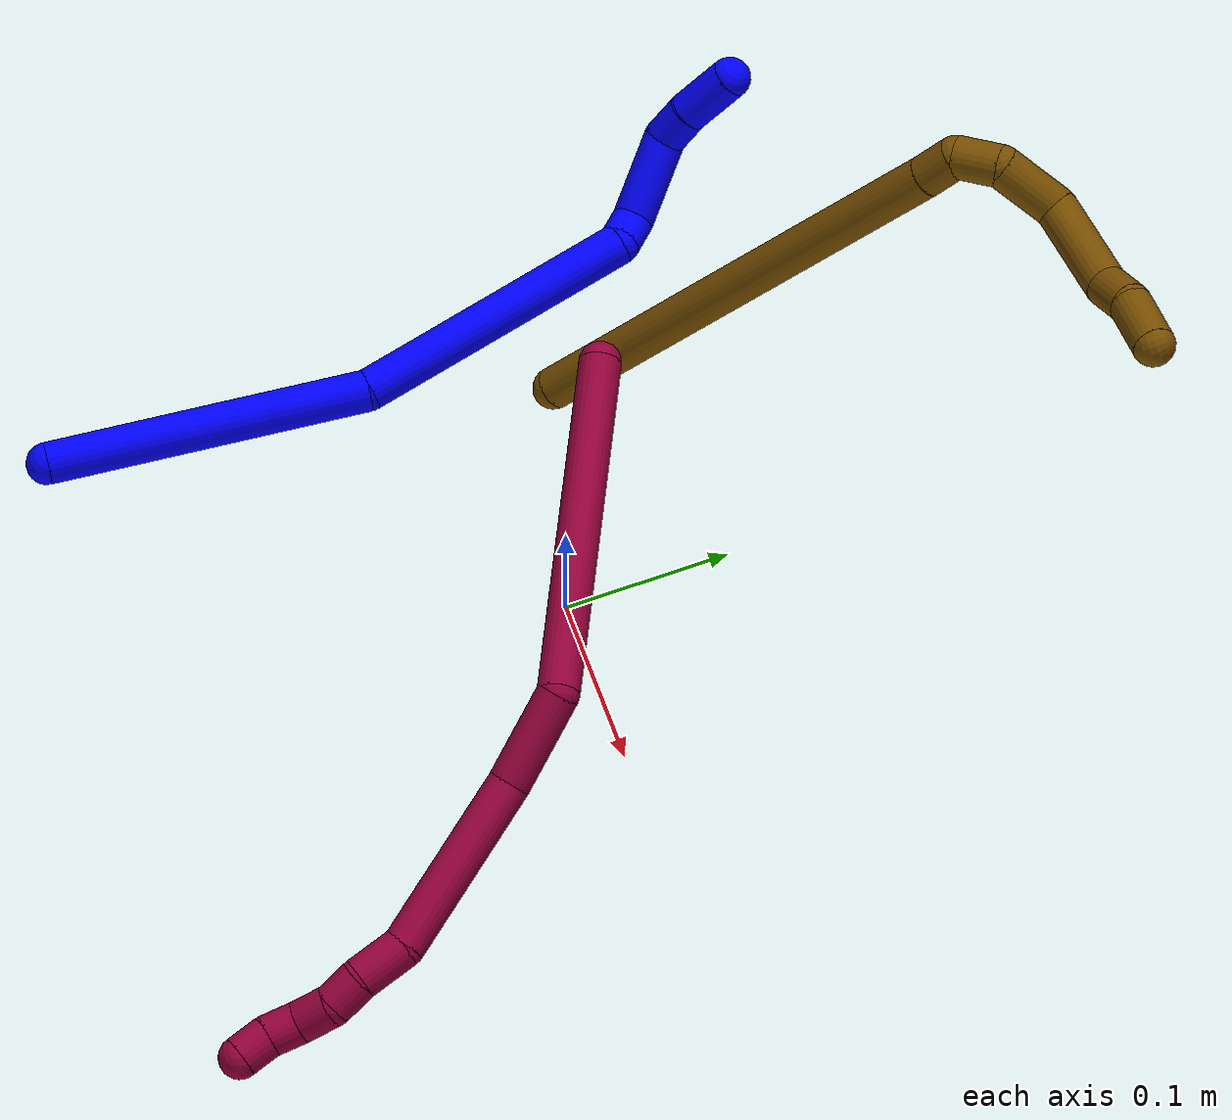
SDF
<sdf version="1.7">
 <world name="default">
  <model name="1">
   <static>0</static>
   <link name="1">
    <collision name="collision-cylinder-e_1_1_4">
     <pose>0.001475 0.088067 -0.039302 -1.99055 0.015292 -0.02357</pose>
     <geometry><cylinder><radius>0.0125</radius><length>0.192901</length></cylinder></geometry>
     <surface>
      <friction><ode><mu>1.16</mu><mu2>1.16</mu2><slip1>0</slip1><slip2>0</slip2></ode></friction>
      <contact><ode><kp>1e+06</kp><kd>1</kd><max_vel>0</max_vel><min_depth>0.001</min_depth></ode></contact>
     </surface>
    </collision>
    <visual name="visual-cylinder-e_1_1_4">
     <pose>0.001475 0.088067 -0.039302 -1.99055 0.015292 -0.02357</pose>
     <geometry><cylinder><radius>0.0125</radius><length>0.192901</length></cylinder></geometry>
     <material><ambient>0 0 1 1</ambient></material>
    </visual>
    <collision name="collision-cylinder-e_2_4_5">
     <pose>0.03096 0.249667 -0.116082 -2.04216 0.327187 -0.526315</pose>
     <geometry><cylinder><radius>0.0125</radius><length>0.174312</length></cylinder></geometry>
     <surface>
      <friction><ode><mu>1.16</mu><mu2>1.16</mu2><slip1>0</slip1><slip2>0</slip2></ode></friction>
      <contact><ode><kp>1e+06</kp><kd>1</kd><max_vel>0</max_vel><min_depth>0.001</min_depth></ode></contact>
     </surface>
    </collision>
    <visual name="visual-cylinder-e_2_4_5">
     <pose>0.03096 0.249667 -0.116082 -2.04216 0.327187 -0.526315</pose>
     <geometry><cylinder><radius>0.0125</radius><length>0.174312</length></cylinder></geometry>
     <material><ambient>0 0 1 1</ambient></material>
    </visual>
    <collision name="collision-cylinder-e_3_5_6">
     <pose>0.06734 0.330035 -0.153644 -1.58298 0.885909 -0.895384</pose>
     <geometry><cylinder><radius>0.0125</radius><length>0.021614</length></cylinder></geometry>
     <surface>
      <friction><ode><mu>1.16</mu><mu2>1.16</mu2><slip1>0</slip1><slip2>0</slip2></ode></friction>
      <contact><ode><kp>1e+06</kp><kd>1</kd><max_vel>0</max_vel><min_depth>0.001</min_depth></ode></contact>
     </surface>
    </collision>
    <visual name="visual-cylinder-e_3_5_6">
     <pose>0.06734 0.330035 -0.153644 -1.58298 0.885909 -0.895384</pose>
     <geometry><cylinder><radius>0.0125</radius><length>0.021614</length></cylinder></geometry>
     <material><ambient>0 0 1 1</ambient></material>
    </visual>
    <collision name="collision-cylinder-e_4_6_7">
     <pose>0.093678 0.344658 -0.17084 -2.71455 0.762741 -2.15022</pose>
     <geometry><cylinder><radius>0.0125</radius><length>0.052014</length></cylinder></geometry>
     <surface>
      <friction><ode><mu>1.16</mu><mu2>1.16</mu2><slip1>0</slip1><slip2>0</slip2></ode></friction>
      <contact><ode><kp>1e+06</kp><kd>1</kd><max_vel>0</max_vel><min_depth>0.001</min_depth></ode></contact>
     </surface>
    </collision>
    <visual name="visual-cylinder-e_4_6_7">
     <pose>0.093678 0.344658 -0.17084 -2.71455 0.762741 -2.15022</pose>
     <geometry><cylinder><radius>0.0125</radius><length>0.052014</length></cylinder></geometry>
     <material><ambient>0 0 1 1</ambient></material>
    </visual>
    <collision name="collision-cylinder-e_5_7_8">
     <pose>0.113622 0.355694 -0.199212 -2.86069 0.166996 -1.06896</pose>
     <geometry><cylinder><radius>0.0125</radius><length>0.023768</length></cylinder></geometry>
     <surface>
      <friction><ode><mu>1.16</mu><mu2>1.16</mu2><slip1>0</slip1><slip2>0</slip2></ode></friction>
      <contact><ode><kp>1e+06</kp><kd>1</kd><max_vel>0</max_vel><min_depth>0.001</min_depth></ode></contact>
     </surface>
    </collision>
    <visual name="visual-cylinder-e_5_7_8">
     <pose>0.113622 0.355694 -0.199212 -2.86069 0.166996 -1.06896</pose>
     <geometry><cylinder><radius>0.0125</radius><length>0.023768</length></cylinder></geometry>
     <material><ambient>0 0 1 1</ambient></material>
    </visual>
    <collision name="collision-cylinder-e_6_8_2">
     <pose>0.11736 0.365966 -0.226618 -2.73131 0.09979 -0.471095</pose>
     <geometry><cylinder><radius>0.0125</radius><length>0.035392</length></cylinder></geometry>
     <surface>
      <friction><ode><mu>1.16</mu><mu2>1.16</mu2><slip1>0</slip1><slip2>0</slip2></ode></friction>
      <contact><ode><kp>1e+06</kp><kd>1</kd><max_vel>0</max_vel><min_depth>0.001</min_depth></ode></contact>
     </surface>
    </collision>
    <visual name="visual-cylinder-e_6_8_2">
     <pose>0.11736 0.365966 -0.226618 -2.73131 0.09979 -0.471095</pose>
     <geometry><cylinder><radius>0.0125</radius><length>0.035392</length></cylinder></geometry>
     <material><ambient>0 0 1 1</ambient></material>
    </visual>
    <collision name="collision-sphere-2">
     <pose>0.119123 0.372989 -0.242765 0 -0 0</pose>
     <geometry><sphere><radius>0.0125</radius></sphere></geometry>
     <surface>
      <friction><ode><mu>1.16</mu><mu2>1.16</mu2><slip1>0</slip1><slip2>0</slip2></ode></friction>
      <contact><ode><kp>1e+06</kp><kd>1</kd><max_vel>0</max_vel><min_depth>0.001</min_depth></ode></contact>
     </surface>
    </collision>
    <visual name="visual-sphere-2">
     <pose>0.119123 0.372989 -0.242765 0 -0 0</pose>
     <geometry><sphere><radius>0.0125</radius></sphere></geometry>
     <material><ambient>0 0 1 1</ambient></material>
    </visual>
    <collision name="collision-sphere-4">
     <pose>0.00295 0.176135 -0.078604 0 -0 0</pose>
     <geometry><sphere><radius>0.0125</radius></sphere></geometry>
     <surface>
      <friction><ode><mu>1.16</mu><mu2>1.16</mu2><slip1>0</slip1><slip2>0</slip2></ode></friction>
      <contact><ode><kp>1e+06</kp><kd>1</kd><max_vel>0</max_vel><min_depth>0.001</min_depth></ode></contact>
     </surface>
    </collision>
    <visual name="visual-sphere-4">
     <pose>0.00295 0.176135 -0.078604 0 -0 0</pose>
     <geometry><sphere><radius>0.0125</radius></sphere></geometry>
     <material><ambient>0 0 1 1</ambient></material>
    </visual>
    <collision name="collision-sphere-1">
     <geometry><sphere><radius>0.0125</radius></sphere></geometry>
     <surface>
      <friction><ode><mu>1.16</mu><mu2>1.16</mu2><slip1>0</slip1><slip2>0</slip2></ode></friction>
      <contact><ode><kp>1e+06</kp><kd>1</kd><max_vel>0</max_vel><min_depth>0.001</min_depth></ode></contact>
     </surface>
    </collision>
    <visual name="visual-sphere-1">
     <geometry><sphere><radius>0.0125</radius></sphere></geometry>
     <material><ambient>0 0 1 1</ambient></material>
    </visual>
    <collision name="collision-sphere-8">
     <pose>0.115597 0.358943 -0.210472 0 -0 0</pose>
     <geometry><sphere><radius>0.0125</radius></sphere></geometry>
     <surface>
      <friction><ode><mu>1.16</mu><mu2>1.16</mu2><slip1>0</slip1><slip2>0</slip2></ode></friction>
      <contact><ode><kp>1e+06</kp><kd>1</kd><max_vel>0</max_vel><min_depth>0.001</min_depth></ode></contact>
     </surface>
    </collision>
    <visual name="visual-sphere-8">
     <pose>0.115597 0.358943 -0.210472 0 -0 0</pose>
     <geometry><sphere><radius>0.0125</radius></sphere></geometry>
     <material><ambient>0 0 1 1</ambient></material>
    </visual>
    <collision name="collision-sphere-5">
     <pose>0.05897 0.323199 -0.153561 0 -0 0</pose>
     <geometry><sphere><radius>0.0125</radius></sphere></geometry>
     <surface>
      <friction><ode><mu>1.16</mu><mu2>1.16</mu2><slip1>0</slip1><slip2>0</slip2></ode></friction>
      <contact><ode><kp>1e+06</kp><kd>1</kd><max_vel>0</max_vel><min_depth>0.001</min_depth></ode></contact>
     </surface>
    </collision>
    <visual name="visual-sphere-5">
     <pose>0.05897 0.323199 -0.153561 0 -0 0</pose>
     <geometry><sphere><radius>0.0125</radius></sphere></geometry>
     <material><ambient>0 0 1 1</ambient></material>
    </visual>
    <collision name="collision-sphere-6">
     <pose>0.07571 0.336871 -0.153727 0 -0 0</pose>
     <geometry><sphere><radius>0.0125</radius></sphere></geometry>
     <surface>
      <friction><ode><mu>1.16</mu><mu2>1.16</mu2><slip1>0</slip1><slip2>0</slip2></ode></friction>
      <contact><ode><kp>1e+06</kp><kd>1</kd><max_vel>0</max_vel><min_depth>0.001</min_depth></ode></contact>
     </surface>
    </collision>
    <visual name="visual-sphere-6">
     <pose>0.07571 0.336871 -0.153727 0 -0 0</pose>
     <geometry><sphere><radius>0.0125</radius></sphere></geometry>
     <material><ambient>0 0 1 1</ambient></material>
    </visual>
    <collision name="collision-sphere-7">
     <pose>0.111646 0.352445 -0.187953 0 -0 0</pose>
     <geometry><sphere><radius>0.0125</radius></sphere></geometry>
     <surface>
      <friction><ode><mu>1.16</mu><mu2>1.16</mu2><slip1>0</slip1><slip2>0</slip2></ode></friction>
      <contact><ode><kp>1e+06</kp><kd>1</kd><max_vel>0</max_vel><min_depth>0.001</min_depth></ode></contact>
     </surface>
    </collision>
    <visual name="visual-sphere-7">
     <pose>0.111646 0.352445 -0.187953 0 -0 0</pose>
     <geometry><sphere><radius>0.0125</radius></sphere></geometry>
     <material><ambient>0 0 1 1</ambient></material>
    </visual>
    <inertial>
     <pose>0.037727 0.213949 -0.105556 0 -0 0</pose>
     <mass>0.5</mass>
     <inertia>
      <ixx>0.000742</ixx>
      <ixy>0</ixy>
      <ixz>0</ixz>
      <iyy>-0.000563</iyy>
      <iyz>0</iyz>
      <izz>-0.001123</izz>
     </inertia>
    </inertial>
   </link>
   <pose>-0.184654 -0.255955 0.011626 -2.72166 0.033668 3.02924</pose>
  </model>
  <model name="8">
   <static>0</static>
   <link name="8">
    <collision name="collision-cylinder-e_1_1_4">
     <pose>0.019826 -0.016124 0.104472 0.153134 0.1854 0.014264</pose>
     <geometry><cylinder><radius>0.0125</radius><length>0.215105</length></cylinder></geometry>
     <surface>
      <friction><ode><mu>1.16</mu><mu2>1.16</mu2><slip1>0</slip1><slip2>0</slip2></ode></friction>
      <contact><ode><kp>1e+06</kp><kd>1</kd><max_vel>0</max_vel><min_depth>0.001</min_depth></ode></contact>
     </surface>
    </collision>
    <visual name="visual-cylinder-e_1_1_4">
     <pose>0.019826 -0.016124 0.104472 0.153134 0.1854 0.014264</pose>
     <geometry><cylinder><radius>0.0125</radius><length>0.215105</length></cylinder></geometry>
     <material><ambient>0.584314 0 0.227451 1</ambient></material>
    </visual>
    <collision name="collision-cylinder-e_2_4_5">
     <pose>0.059693 -0.044453 0.226867 0.597803 0.746066 0.240021</pose>
     <geometry><cylinder><radius>0.0125</radius><length>0.059052</length></cylinder></geometry>
     <surface>
      <friction><ode><mu>1.16</mu><mu2>1.16</mu2><slip1>0</slip1><slip2>0</slip2></ode></friction>
      <contact><ode><kp>1e+06</kp><kd>1</kd><max_vel>0</max_vel><min_depth>0.001</min_depth></ode></contact>
     </surface>
    </collision>
    <visual name="visual-cylinder-e_2_4_5">
     <pose>0.059693 -0.044453 0.226867 0.597803 0.746066 0.240021</pose>
     <geometry><cylinder><radius>0.0125</radius><length>0.059052</length></cylinder></geometry>
     <material><ambient>0.584314 0 0.227451 1</ambient></material>
    </visual>
    <collision name="collision-cylinder-e_3_5_6">
     <pose>0.10367 -0.085825 0.285611 0.620419 0.44515 0.144847</pose>
     <geometry><cylinder><radius>0.0125</radius><length>0.111177</length></cylinder></geometry>
     <surface>
      <friction><ode><mu>1.16</mu><mu2>1.16</mu2><slip1>0</slip1><slip2>0</slip2></ode></friction>
      <contact><ode><kp>1e+06</kp><kd>1</kd><max_vel>0</max_vel><min_depth>0.001</min_depth></ode></contact>
     </surface>
    </collision>
    <visual name="visual-cylinder-e_3_5_6">
     <pose>0.10367 -0.085825 0.285611 0.620419 0.44515 0.144847</pose>
     <geometry><cylinder><radius>0.0125</radius><length>0.111177</length></cylinder></geometry>
     <material><ambient>0.584314 0 0.227451 1</ambient></material>
    </visual>
    <collision name="collision-cylinder-e_4_6_7">
     <pose>0.133605 -0.127052 0.333891 1.01685 0.400254 0.22513</pose>
     <geometry><cylinder><radius>0.0125</radius><length>0.030794</length></cylinder></geometry>
     <surface>
      <friction><ode><mu>1.16</mu><mu2>1.16</mu2><slip1>0</slip1><slip2>0</slip2></ode></friction>
      <contact><ode><kp>1e+06</kp><kd>1</kd><max_vel>0</max_vel><min_depth>0.001</min_depth></ode></contact>
     </surface>
    </collision>
    <visual name="visual-cylinder-e_4_6_7">
     <pose>0.133605 -0.127052 0.333891 1.01685 0.400254 0.22513</pose>
     <geometry><cylinder><radius>0.0125</radius><length>0.030794</length></cylinder></geometry>
     <material><ambient>0.584314 0 0.227451 1</ambient></material>
    </visual>
    <collision name="collision-cylinder-e_5_7_8">
     <pose>0.145959 -0.14616 0.346283 0.960146 0.636128 0.339574</pose>
     <geometry><cylinder><radius>0.0125</radius><length>0.02139</length></cylinder></geometry>
     <surface>
      <friction><ode><mu>1.16</mu><mu2>1.16</mu2><slip1>0</slip1><slip2>0</slip2></ode></friction>
      <contact><ode><kp>1e+06</kp><kd>1</kd><max_vel>0</max_vel><min_depth>0.001</min_depth></ode></contact>
     </surface>
    </collision>
    <visual name="visual-cylinder-e_5_7_8">
     <pose>0.145959 -0.14616 0.346283 0.960146 0.636128 0.339574</pose>
     <geometry><cylinder><radius>0.0125</radius><length>0.02139</length></cylinder></geometry>
     <material><ambient>0.584314 0 0.227451 1</ambient></material>
    </visual>
    <collision name="collision-cylinder-e_6_8_9">
     <pose>0.159871 -0.161458 0.35225 1.44613 0.737819 0.657599</pose>
     <geometry><cylinder><radius>0.0125</radius><length>0.022473</length></cylinder></geometry>
     <surface>
      <friction><ode><mu>1.16</mu><mu2>1.16</mu2><slip1>0</slip1><slip2>0</slip2></ode></friction>
      <contact><ode><kp>1e+06</kp><kd>1</kd><max_vel>0</max_vel><min_depth>0.001</min_depth></ode></contact>
     </surface>
    </collision>
    <visual name="visual-cylinder-e_6_8_9">
     <pose>0.159871 -0.161458 0.35225 1.44613 0.737819 0.657599</pose>
     <geometry><cylinder><radius>0.0125</radius><length>0.022473</length></cylinder></geometry>
     <material><ambient>0.584314 0 0.227451 1</ambient></material>
    </visual>
    <collision name="collision-cylinder-e_7_9_10">
     <pose>0.171385 -0.178515 0.355891 1.283 0.406621 0.30555</pose>
     <geometry><cylinder><radius>0.0125</radius><length>0.020001</length></cylinder></geometry>
     <surface>
      <friction><ode><mu>1.16</mu><mu2>1.16</mu2><slip1>0</slip1><slip2>0</slip2></ode></friction>
      <contact><ode><kp>1e+06</kp><kd>1</kd><max_vel>0</max_vel><min_depth>0.001</min_depth></ode></contact>
     </surface>
    </collision>
    <visual name="visual-cylinder-e_7_9_10">
     <pose>0.171385 -0.178515 0.355891 1.283 0.406621 0.30555</pose>
     <geometry><cylinder><radius>0.0125</radius><length>0.020001</length></cylinder></geometry>
     <material><ambient>0.584314 0 0.227451 1</ambient></material>
    </visual>
    <collision name="collision-cylinder-e_8_10_2">
     <pose>0.178716 -0.195158 0.363723 0.98269 0.344212 0.185501</pose>
     <geometry><cylinder><radius>0.0125</radius><length>0.020008</length></cylinder></geometry>
     <surface>
      <friction><ode><mu>1.16</mu><mu2>1.16</mu2><slip1>0</slip1><slip2>0</slip2></ode></friction>
      <contact><ode><kp>1e+06</kp><kd>1</kd><max_vel>0</max_vel><min_depth>0.001</min_depth></ode></contact>
     </surface>
    </collision>
    <visual name="visual-cylinder-e_8_10_2">
     <pose>0.178716 -0.195158 0.363723 0.98269 0.344212 0.185501</pose>
     <geometry><cylinder><radius>0.0125</radius><length>0.020008</length></cylinder></geometry>
     <material><ambient>0.584314 0 0.227451 1</ambient></material>
    </visual>
    <collision name="collision-sphere-2">
     <pose>0.182092 -0.202993 0.368947 0 -0 0</pose>
     <geometry><sphere><radius>0.0125</radius></sphere></geometry>
     <surface>
      <friction><ode><mu>1.16</mu><mu2>1.16</mu2><slip1>0</slip1><slip2>0</slip2></ode></friction>
      <contact><ode><kp>1e+06</kp><kd>1</kd><max_vel>0</max_vel><min_depth>0.001</min_depth></ode></contact>
     </surface>
    </collision>
    <visual name="visual-sphere-2">
     <pose>0.182092 -0.202993 0.368947 0 -0 0</pose>
     <geometry><sphere><radius>0.0125</radius></sphere></geometry>
     <material><ambient>0.584314 0 0.227451 1</ambient></material>
    </visual>
    <collision name="collision-sphere-10">
     <pose>0.17534 -0.187323 0.358498 0 -0 0</pose>
     <geometry><sphere><radius>0.0125</radius></sphere></geometry>
     <surface>
      <friction><ode><mu>1.16</mu><mu2>1.16</mu2><slip1>0</slip1><slip2>0</slip2></ode></friction>
      <contact><ode><kp>1e+06</kp><kd>1</kd><max_vel>0</max_vel><min_depth>0.001</min_depth></ode></contact>
     </surface>
    </collision>
    <visual name="visual-sphere-10">
     <pose>0.17534 -0.187323 0.358498 0 -0 0</pose>
     <geometry><sphere><radius>0.0125</radius></sphere></geometry>
     <material><ambient>0.584314 0 0.227451 1</ambient></material>
    </visual>
    <collision name="collision-sphere-9">
     <pose>0.16743 -0.169708 0.353284 0 -0 0</pose>
     <geometry><sphere><radius>0.0125</radius></sphere></geometry>
     <surface>
      <friction><ode><mu>1.16</mu><mu2>1.16</mu2><slip1>0</slip1><slip2>0</slip2></ode></friction>
      <contact><ode><kp>1e+06</kp><kd>1</kd><max_vel>0</max_vel><min_depth>0.001</min_depth></ode></contact>
     </surface>
    </collision>
    <visual name="visual-sphere-9">
     <pose>0.16743 -0.169708 0.353284 0 -0 0</pose>
     <geometry><sphere><radius>0.0125</radius></sphere></geometry>
     <material><ambient>0.584314 0 0.227451 1</ambient></material>
    </visual>
    <collision name="collision-sphere-4">
     <pose>0.039652 -0.032249 0.208945 0 -0 0</pose>
     <geometry><sphere><radius>0.0125</radius></sphere></geometry>
     <surface>
      <friction><ode><mu>1.16</mu><mu2>1.16</mu2><slip1>0</slip1><slip2>0</slip2></ode></friction>
      <contact><ode><kp>1e+06</kp><kd>1</kd><max_vel>0</max_vel><min_depth>0.001</min_depth></ode></contact>
     </surface>
    </collision>
    <visual name="visual-sphere-4">
     <pose>0.039652 -0.032249 0.208945 0 -0 0</pose>
     <geometry><sphere><radius>0.0125</radius></sphere></geometry>
     <material><ambient>0.584314 0 0.227451 1</ambient></material>
    </visual>
    <collision name="collision-sphere-1">
     <geometry><sphere><radius>0.0125</radius></sphere></geometry>
     <surface>
      <friction><ode><mu>1.16</mu><mu2>1.16</mu2><slip1>0</slip1><slip2>0</slip2></ode></friction>
      <contact><ode><kp>1e+06</kp><kd>1</kd><max_vel>0</max_vel><min_depth>0.001</min_depth></ode></contact>
     </surface>
    </collision>
    <visual name="visual-sphere-1">
     <geometry><sphere><radius>0.0125</radius></sphere></geometry>
     <material><ambient>0.584314 0 0.227451 1</ambient></material>
    </visual>
    <collision name="collision-sphere-8">
     <pose>0.152312 -0.153208 0.351216 0 -0 0</pose>
     <geometry><sphere><radius>0.0125</radius></sphere></geometry>
     <surface>
      <friction><ode><mu>1.16</mu><mu2>1.16</mu2><slip1>0</slip1><slip2>0</slip2></ode></friction>
      <contact><ode><kp>1e+06</kp><kd>1</kd><max_vel>0</max_vel><min_depth>0.001</min_depth></ode></contact>
     </surface>
    </collision>
    <visual name="visual-sphere-8">
     <pose>0.152312 -0.153208 0.351216 0 -0 0</pose>
     <geometry><sphere><radius>0.0125</radius></sphere></geometry>
     <material><ambient>0.584314 0 0.227451 1</ambient></material>
    </visual>
    <collision name="collision-sphere-5">
     <pose>0.079734 -0.056656 0.24479 0 -0 0</pose>
     <geometry><sphere><radius>0.0125</radius></sphere></geometry>
     <surface>
      <friction><ode><mu>1.16</mu><mu2>1.16</mu2><slip1>0</slip1><slip2>0</slip2></ode></friction>
      <contact><ode><kp>1e+06</kp><kd>1</kd><max_vel>0</max_vel><min_depth>0.001</min_depth></ode></contact>
     </surface>
    </collision>
    <visual name="visual-sphere-5">
     <pose>0.079734 -0.056656 0.24479 0 -0 0</pose>
     <geometry><sphere><radius>0.0125</radius></sphere></geometry>
     <material><ambient>0.584314 0 0.227451 1</ambient></material>
    </visual>
    <collision name="collision-sphere-6">
     <pose>0.127606 -0.114993 0.326432 0 -0 0</pose>
     <geometry><sphere><radius>0.0125</radius></sphere></geometry>
     <surface>
      <friction><ode><mu>1.16</mu><mu2>1.16</mu2><slip1>0</slip1><slip2>0</slip2></ode></friction>
      <contact><ode><kp>1e+06</kp><kd>1</kd><max_vel>0</max_vel><min_depth>0.001</min_depth></ode></contact>
     </surface>
    </collision>
    <visual name="visual-sphere-6">
     <pose>0.127606 -0.114993 0.326432 0 -0 0</pose>
     <geometry><sphere><radius>0.0125</radius></sphere></geometry>
     <material><ambient>0.584314 0 0.227451 1</ambient></material>
    </visual>
    <collision name="collision-sphere-7">
     <pose>0.139605 -0.139112 0.34135 0 -0 0</pose>
     <geometry><sphere><radius>0.0125</radius></sphere></geometry>
     <surface>
      <friction><ode><mu>1.16</mu><mu2>1.16</mu2><slip1>0</slip1><slip2>0</slip2></ode></friction>
      <contact><ode><kp>1e+06</kp><kd>1</kd><max_vel>0</max_vel><min_depth>0.001</min_depth></ode></contact>
     </surface>
    </collision>
    <visual name="visual-sphere-7">
     <pose>0.139605 -0.139112 0.34135 0 -0 0</pose>
     <geometry><sphere><radius>0.0125</radius></sphere></geometry>
     <material><ambient>0.584314 0 0.227451 1</ambient></material>
    </visual>
    <inertial>
     <pose>0.074296 -0.067555 0.215247 0 -0 0</pose>
     <mass>0.5</mass>
     <inertia><ixx>0.000999</ixx><ixy>0</ixy><ixz>0</ixz><iyy>0.000969</iyy><iyz>0</iyz><izz>9e-06</izz></inertia>
    </inertial>
   </link>
   <pose>-0.107046 0.059586 0.07728 -0.700491 1.29954 -0.994431</pose>
  </model>
  <model name="12">
   <static>0</static>
   <link name="12">
    <collision name="collision-cylinder-e_1_1_4">
     <pose>-0.028918 0.037393 0.137572 -0.265397 -0.200128 0.026802</pose>
     <geometry><cylinder><radius>0.0125</radius><length>0.290933</length></cylinder></geometry>
     <surface>
      <friction><ode><mu>1.16</mu><mu2>1.16</mu2><slip1>0</slip1><slip2>0</slip2></ode></friction>
      <contact><ode><kp>1e+06</kp><kd>1</kd><max_vel>0</max_vel><min_depth>0.001</min_depth></ode></contact>
     </surface>
    </collision>
    <visual name="visual-cylinder-e_1_1_4">
     <pose>-0.028918 0.037393 0.137572 -0.265397 -0.200128 0.026802</pose>
     <geometry><cylinder><radius>0.0125</radius><length>0.290933</length></cylinder></geometry>
     <material><ambient>0.466667 0.301961 0 1</ambient></material>
    </visual>
    <collision name="collision-cylinder-e_2_4_5">
     <pose>-0.059882 0.078248 0.286227 -0.302719 -0.174399 0.026666</pose>
     <geometry><cylinder><radius>0.0125</radius><length>0.02358</length></cylinder></geometry>
     <surface>
      <friction><ode><mu>1.16</mu><mu2>1.16</mu2><slip1>0</slip1><slip2>0</slip2></ode></friction>
      <contact><ode><kp>1e+06</kp><kd>1</kd><max_vel>0</max_vel><min_depth>0.001</min_depth></ode></contact>
     </surface>
    </collision>
    <visual name="visual-cylinder-e_2_4_5">
     <pose>-0.059882 0.078248 0.286227 -0.302719 -0.174399 0.026666</pose>
     <geometry><cylinder><radius>0.0125</radius><length>0.02358</length></cylinder></geometry>
     <material><ambient>0.466667 0.301961 0 1</ambient></material>
    </visual>
    <collision name="collision-cylinder-e_3_5_6">
     <pose>-0.065197 0.075796 0.308956 0.469844 -0.245258 -0.058979</pose>
     <geometry><cylinder><radius>0.0125</radius><length>0.026928</length></cylinder></geometry>
     <surface>
      <friction><ode><mu>1.16</mu><mu2>1.16</mu2><slip1>0</slip1><slip2>0</slip2></ode></friction>
      <contact><ode><kp>1e+06</kp><kd>1</kd><max_vel>0</max_vel><min_depth>0.001</min_depth></ode></contact>
     </surface>
    </collision>
    <visual name="visual-cylinder-e_3_5_6">
     <pose>-0.065197 0.075796 0.308956 0.469844 -0.245258 -0.058979</pose>
     <geometry><cylinder><radius>0.0125</radius><length>0.026928</length></cylinder></geometry>
     <material><ambient>0.466667 0.301961 0 1</ambient></material>
    </visual>
    <collision name="collision-cylinder-e_4_6_7">
     <pose>-0.069037 0.0526 0.330123 1.0672 -0.028954 -0.017106</pose>
     <geometry><cylinder><radius>0.0125</radius><length>0.03948</length></cylinder></geometry>
     <surface>
      <friction><ode><mu>1.16</mu><mu2>1.16</mu2><slip1>0</slip1><slip2>0</slip2></ode></friction>
      <contact><ode><kp>1e+06</kp><kd>1</kd><max_vel>0</max_vel><min_depth>0.001</min_depth></ode></contact>
     </surface>
    </collision>
    <visual name="visual-cylinder-e_4_6_7">
     <pose>-0.069037 0.0526 0.330123 1.0672 -0.028954 -0.017106</pose>
     <geometry><cylinder><radius>0.0125</radius><length>0.03948</length></cylinder></geometry>
     <material><ambient>0.466667 0.301961 0 1</ambient></material>
    </visual>
    <collision name="collision-cylinder-e_5_7_8">
     <pose>-0.090038 0.016798 0.348706 1.11581 -0.7808 -0.502744</pose>
     <geometry><cylinder><radius>0.0125</radius><length>0.058049</length></cylinder></geometry>
     <surface>
      <friction><ode><mu>1.16</mu><mu2>1.16</mu2><slip1>0</slip1><slip2>0</slip2></ode></friction>
      <contact><ode><kp>1e+06</kp><kd>1</kd><max_vel>0</max_vel><min_depth>0.001</min_depth></ode></contact>
     </surface>
    </collision>
    <visual name="visual-cylinder-e_5_7_8">
     <pose>-0.090038 0.016798 0.348706 1.11581 -0.7808 -0.502744</pose>
     <geometry><cylinder><radius>0.0125</radius><length>0.058049</length></cylinder></geometry>
     <material><ambient>0.466667 0.301961 0 1</ambient></material>
    </visual>
    <collision name="collision-cylinder-e_6_8_9">
     <pose>-0.121998 -0.004397 0.364759 0.36536 -0.994942 -0.199967</pose>
     <geometry><cylinder><radius>0.0125</radius><length>0.027496</length></cylinder></geometry>
     <surface>
      <friction><ode><mu>1.16</mu><mu2>1.16</mu2><slip1>0</slip1><slip2>0</slip2></ode></friction>
      <contact><ode><kp>1e+06</kp><kd>1</kd><max_vel>0</max_vel><min_depth>0.001</min_depth></ode></contact>
     </surface>
    </collision>
    <visual name="visual-cylinder-e_6_8_9">
     <pose>-0.121998 -0.004397 0.364759 0.36536 -0.994942 -0.199967</pose>
     <geometry><cylinder><radius>0.0125</radius><length>0.027496</length></cylinder></geometry>
     <material><ambient>0.466667 0.301961 0 1</ambient></material>
    </visual>
    <collision name="collision-cylinder-e_7_9_2">
     <pose>-0.147651 -0.014744 0.376527 1.01396 -1.00157 -0.590219</pose>
     <geometry><cylinder><radius>0.0125</radius><length>0.033533</length></cylinder></geometry>
     <surface>
      <friction><ode><mu>1.16</mu><mu2>1.16</mu2><slip1>0</slip1><slip2>0</slip2></ode></friction>
      <contact><ode><kp>1e+06</kp><kd>1</kd><max_vel>0</max_vel><min_depth>0.001</min_depth></ode></contact>
     </surface>
    </collision>
    <visual name="visual-cylinder-e_7_9_2">
     <pose>-0.147651 -0.014744 0.376527 1.01396 -1.00157 -0.590219</pose>
     <geometry><cylinder><radius>0.0125</radius><length>0.033533</length></cylinder></geometry>
     <material><ambient>0.466667 0.301961 0 1</ambient></material>
    </visual>
    <collision name="collision-sphere-2">
     <pose>-0.161774 -0.022415 0.381303 0 -0 0</pose>
     <geometry><sphere><radius>0.0125</radius></sphere></geometry>
     <surface>
      <friction><ode><mu>1.16</mu><mu2>1.16</mu2><slip1>0</slip1><slip2>0</slip2></ode></friction>
      <contact><ode><kp>1e+06</kp><kd>1</kd><max_vel>0</max_vel><min_depth>0.001</min_depth></ode></contact>
     </surface>
    </collision>
    <visual name="visual-sphere-2">
     <pose>-0.161774 -0.022415 0.381303 0 -0 0</pose>
     <geometry><sphere><radius>0.0125</radius></sphere></geometry>
     <material><ambient>0.466667 0.301961 0 1</ambient></material>
    </visual>
    <collision name="collision-sphere-9">
     <pose>-0.133529 -0.007072 0.371752 0 -0 0</pose>
     <geometry><sphere><radius>0.0125</radius></sphere></geometry>
     <surface>
      <friction><ode><mu>1.16</mu><mu2>1.16</mu2><slip1>0</slip1><slip2>0</slip2></ode></friction>
      <contact><ode><kp>1e+06</kp><kd>1</kd><max_vel>0</max_vel><min_depth>0.001</min_depth></ode></contact>
     </surface>
    </collision>
    <visual name="visual-sphere-9">
     <pose>-0.133529 -0.007072 0.371752 0 -0 0</pose>
     <geometry><sphere><radius>0.0125</radius></sphere></geometry>
     <material><ambient>0.466667 0.301961 0 1</ambient></material>
    </visual>
    <collision name="collision-sphere-4">
     <pose>-0.057836 0.074786 0.275143 0 -0 0</pose>
     <geometry><sphere><radius>0.0125</radius></sphere></geometry>
     <surface>
      <friction><ode><mu>1.16</mu><mu2>1.16</mu2><slip1>0</slip1><slip2>0</slip2></ode></friction>
      <contact><ode><kp>1e+06</kp><kd>1</kd><max_vel>0</max_vel><min_depth>0.001</min_depth></ode></contact>
     </surface>
    </collision>
    <visual name="visual-sphere-4">
     <pose>-0.057836 0.074786 0.275143 0 -0 0</pose>
     <geometry><sphere><radius>0.0125</radius></sphere></geometry>
     <material><ambient>0.466667 0.301961 0 1</ambient></material>
    </visual>
    <collision name="collision-sphere-1">
     <geometry><sphere><radius>0.0125</radius></sphere></geometry>
     <surface>
      <friction><ode><mu>1.16</mu><mu2>1.16</mu2><slip1>0</slip1><slip2>0</slip2></ode></friction>
      <contact><ode><kp>1e+06</kp><kd>1</kd><max_vel>0</max_vel><min_depth>0.001</min_depth></ode></contact>
     </surface>
    </collision>
    <visual name="visual-sphere-1">
     <geometry><sphere><radius>0.0125</radius></sphere></geometry>
     <material><ambient>0.466667 0.301961 0 1</ambient></material>
    </visual>
    <collision name="collision-sphere-8">
     <pose>-0.110467 -0.001722 0.357767 0 -0 0</pose>
     <geometry><sphere><radius>0.0125</radius></sphere></geometry>
     <surface>
      <friction><ode><mu>1.16</mu><mu2>1.16</mu2><slip1>0</slip1><slip2>0</slip2></ode></friction>
      <contact><ode><kp>1e+06</kp><kd>1</kd><max_vel>0</max_vel><min_depth>0.001</min_depth></ode></contact>
     </surface>
    </collision>
    <visual name="visual-sphere-8">
     <pose>-0.110467 -0.001722 0.357767 0 -0 0</pose>
     <geometry><sphere><radius>0.0125</radius></sphere></geometry>
     <material><ambient>0.466667 0.301961 0 1</ambient></material>
    </visual>
    <collision name="collision-sphere-5">
     <pose>-0.061928 0.081709 0.29731 0 -0 0</pose>
     <geometry><sphere><radius>0.0125</radius></sphere></geometry>
     <surface>
      <friction><ode><mu>1.16</mu><mu2>1.16</mu2><slip1>0</slip1><slip2>0</slip2></ode></friction>
      <contact><ode><kp>1e+06</kp><kd>1</kd><max_vel>0</max_vel><min_depth>0.001</min_depth></ode></contact>
     </surface>
    </collision>
    <visual name="visual-sphere-5">
     <pose>-0.061928 0.081709 0.29731 0 -0 0</pose>
     <geometry><sphere><radius>0.0125</radius></sphere></geometry>
     <material><ambient>0.466667 0.301961 0 1</ambient></material>
    </visual>
    <collision name="collision-sphere-6">
     <pose>-0.068466 0.069883 0.320601 0 -0 0</pose>
     <geometry><sphere><radius>0.0125</radius></sphere></geometry>
     <surface>
      <friction><ode><mu>1.16</mu><mu2>1.16</mu2><slip1>0</slip1><slip2>0</slip2></ode></friction>
      <contact><ode><kp>1e+06</kp><kd>1</kd><max_vel>0</max_vel><min_depth>0.001</min_depth></ode></contact>
     </surface>
    </collision>
    <visual name="visual-sphere-6">
     <pose>-0.068466 0.069883 0.320601 0 -0 0</pose>
     <geometry><sphere><radius>0.0125</radius></sphere></geometry>
     <material><ambient>0.466667 0.301961 0 1</ambient></material>
    </visual>
    <collision name="collision-sphere-7">
     <pose>-0.069609 0.035318 0.339646 0 -0 0</pose>
     <geometry><sphere><radius>0.0125</radius></sphere></geometry>
     <surface>
      <friction><ode><mu>1.16</mu><mu2>1.16</mu2><slip1>0</slip1><slip2>0</slip2></ode></friction>
      <contact><ode><kp>1e+06</kp><kd>1</kd><max_vel>0</max_vel><min_depth>0.001</min_depth></ode></contact>
     </surface>
    </collision>
    <visual name="visual-sphere-7">
     <pose>-0.069609 0.035318 0.339646 0 -0 0</pose>
     <geometry><sphere><radius>0.0125</radius></sphere></geometry>
     <material><ambient>0.466667 0.301961 0 1</ambient></material>
    </visual>
    <inertial>
     <pose>-0.055678 0.034403 0.222048 0 -0 0</pose>
     <mass>0.5</mass>
     <inertia>
      <ixx>0.002081</ixx>
      <ixy>0</ixy>
      <ixz>0</ixz>
      <iyy>0.002064</iyy>
      <iyz>0</iyz>
      <izz>-4.9e-05</izz>
     </inertia>
    </inertial>
   </link>
   <pose>-0.130017 0.039022 0.012392 1.06217 0.621732 2.65286</pose>
  </model>
 </world>
</sdf>
